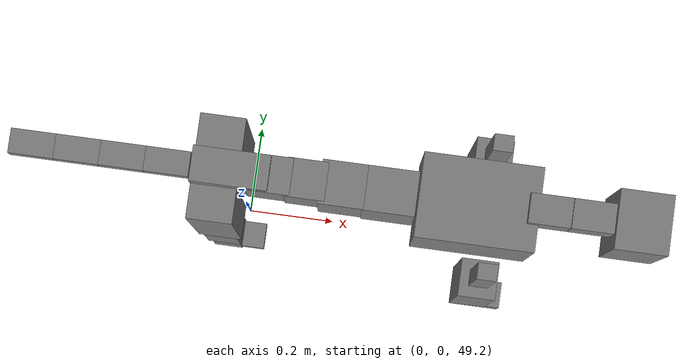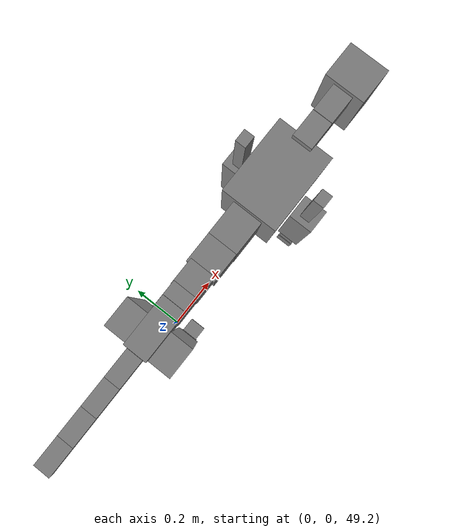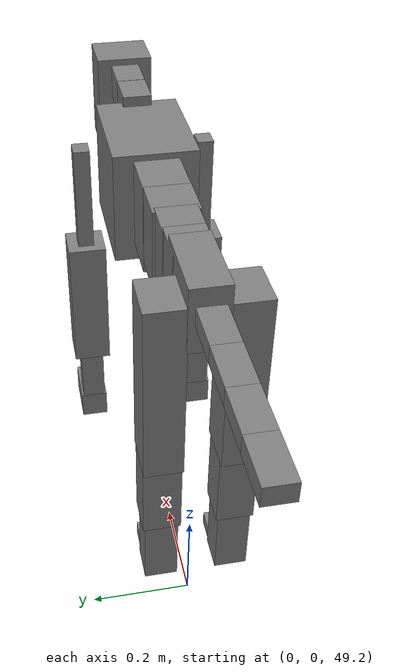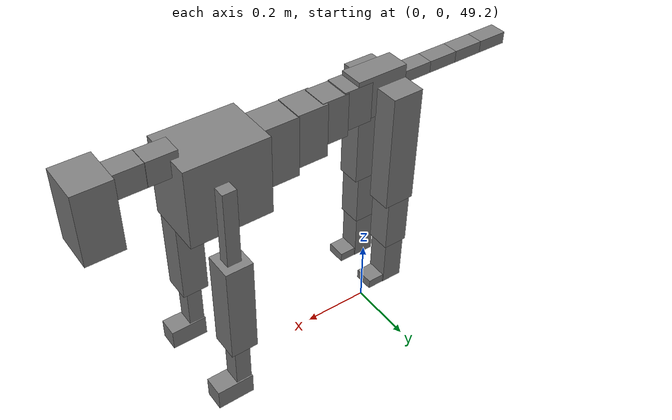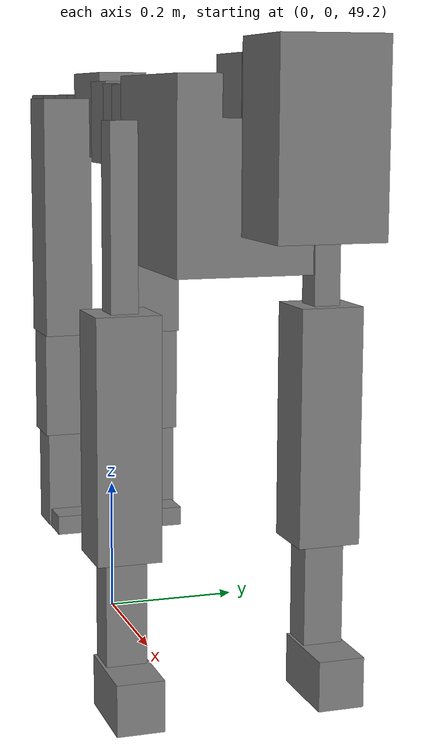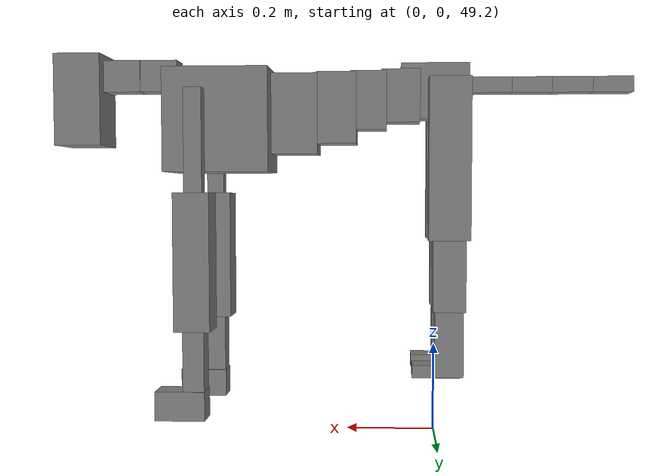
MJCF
<mujoco model="dog">

    <default>
        <joint armature="0.02" stiffness="1" damping="0.2" limited="true"/>
        <geom condim="3" friction="1 0.05 0.05" margin="0.01"/>
        <motor ctrllimited="true" ctrlrange="-1.0 1.0" forcelimited="true" gear="50"/>
    </default>

    <compiler inertiafromgeom="true" angle="radian"/>

    <option timestep="0.016" iterations="50" tolerance="1e-10" solver="Newton" jacobian="dense" cone="pyramidal"/>

    <size nconmax="20000" njmax="60000" nstack="5000000"/>
    <visual>
        <map force="0.1" zfar="30"/>
        <rgba haze="0.15 0.25 0.35 1"/>
        <quality shadowsize="2048"/>
        <global offwidth="800" offheight="800"/>
    </visual>

    <asset>
        <texture type="skybox" builtin="gradient" rgb1="0.3 0.5 0.7" rgb2="0 0 0" width="512" height="512"/>
        <texture name="texplane" type="2d" builtin="checker" rgb1=".2 .3 .4" rgb2=".1 0.15 0.2" width="512" height="512"
                 mark="cross" markrgb=".8 .8 .8"/>
        <texture name="texgeom" type="cube" builtin="flat" mark="cross" width="127" height="1278" rgb1="0.8 0.6 0.4"
                 rgb2="0.8 0.6 0.4" markrgb="1 1 1" random="0.01"/>

        <material name="matplane" reflectance="0.3" texture="texplane" texrepeat="1 1" texuniform="true"/>
        <material name="matgeom" texture="texgeom" texuniform="true" rgba="0.8 0.6 .4 1"/>
    </asset>

    <worldbody>
        <geom name="floor" pos="0 0 0" size="0 0 .25" type="plane" material="matplane" condim="3"/>

        <light directional="false" diffuse=".2 .2 .2" specular="0 0 0" pos="0 0 5" dir="0 0 -1" castshadow="false"/>
        <light mode="targetbodycom" target="torso" directional="false" diffuse=".8 .8 .8" specular="0.3 0.3 0.3"
               pos="0 0 4.0" dir="0 0 -1"/>

        <body name="root" pos="0 0 50">
            <freejoint name="root_1"/>
            <geom type="box" pos="0 0 -0.02" size="0.0774  0.0358  0.063" density="2030"/>

            <body name="spine1" pos="0.054 0 0">
                <joint name="spine1_y" axis="0 1 0" range="0 0.7" limited="true"/>
                <geom type="box" pos="0.02375 0 -0.03" size="0.04375  0.0375  0.05985" density="2030"/>

                <body name="spine2" pos="0.0612 0 0">
                    <joint name="spine2_y" axis="0 1 0" range="-0.15 0.15" limited="true"/>
                    <geom type="box" pos="0.03555  0  -0.04" size="0.04055  0.039  0.06615" density="2030"/>

                    <body name="spine3" pos="0.0730 0 0">
                        <joint name="spine3_y" axis="0 1 0" range="-0.15 0.15" limited="true"/>
                        <geom type="box" pos="0.03555  0  -0.057" size="0.04555  0.0445  0.081" density="2030"/>

                        <body name="spine4" pos="0.0780 0 0">
                            <joint name="spine4_y" axis="0 1 0" range="-0.15 0.15" limited="true"/>
                            <geom type="box" pos="0.05265  0  -0.07" size="0.05265  0.045  0.09135" density="2030"/>

                            <body name="torso" pos="0.1082 0 0">
                                <joint name="torso_y" axis="0 1 0" range="-0.15 0.15" limited="true"/>
                                <geom type="box" pos="0.11925  0  -0.085" size="0.11925  0.085  0.11745"
                                      density="2030"/>

                                <body name="neck1" pos="0.2160  0   0.0180">
                                    <joint name="neck1_y" axis="0 1 0" range="-1.2  -1" limited="true"/>
                                    <geom type="box" pos="0.0423  0  0" size="0.0423  0.03  0.036" density="2325"/>

                                    <body name="neck2" pos="0.0853  0  0">
                                        <joint name="neck2_y" axis="0 1 0" range="0.1  0" limited="true"/>
                                        <geom type="box" pos="0.0423  0  0" size="0.0423  0.03  0.036" density="2325"/>

                                        <body name="head" pos="0.0853  0  0">
                                            <joint name="head_y" axis="0 1 0" range="-0.3  -0.2" limited="true"/>
                                            <geom type="box" pos="0.0531  0  -0.055" size="0.0531  0.06  0.1044"
                                                  density="4030"/>

                                        </body>
                                    </body>
                                </body>

                                <body name="front_shoulder" pos="0.156  0   -0.0480">
                                    <joint name="front_shoulder_y" axis="0 1 0" range="-1 1.5" limited="true"/>
                                    <geom type="box" pos="0 0.13 -0.1007" size="0.0199  0.0170  0.1274" density="1158"/>
                                    <geom type="box" pos="0 -0.13 -0.1007" size="0.0199  0.0170  0.1274"
                                          density="1158"/>

                                    <body name="front_elbow" pos="0  0  -0.2014">
                                        <joint name="front_elbow_y" axis="0 1 0" range="-2 0" limited="true"/>
                                        <geom type="box" pos="0 0.13 -0.1516" size="0.0396  0.0405  0.1516"
                                              density="1081"/>
                                        <geom type="box" pos="0 -0.13 -0.1516" size="0.0396  0.0405  0.1516"
                                              density="1081"/>

                                        <body name="front_wrist" pos="0  0  -0.3032">
                                            <joint name="front_wrist_y" axis="0 1 0" range="-0.2 0" limited="true"/>
                                            <geom type="box" pos="0 0.13 -0.0739" size="0.0234  0.0260  0.0871"
                                                  density="1664"/>
                                            <geom type="box" pos="0 -0.13 -0.0739" size="0.0234  0.0260  0.0871"
                                                  density="1664"/>

                                            <body name="front_finger_end" pos="0  0  -0.1478">
                                                <joint name="front_finger_y" axis="0 1 0" range="-0.4 1"
                                                       limited="true"/>
                                                <geom type="box" pos="0.0300  0.13  -0.0174"
                                                      size="0.0551  0.0300  0.0324" density="1515"/>
                                                <geom type="box" pos="0.0300  -0.13  -0.0174"
                                                      size="0.0551  0.0300  0.0324" density="1515"/>

                                            </body>

                                        </body>
                                    </body>
                                </body>

                            </body>
                        </body>
                    </body>
                </body>
            </body>

            <body name="back_hip" pos="-0.03 0 -0.018">
                <joint name="back_hip_y" axis="0 1 0" range="-1.5 0.3" limited="true"/>
                <geom type="box" pos="0 0.07 -0.1576" size="0.0463  0.0363  0.1804" density="1154"/>
                <geom type="box" pos="0 -0.07 -0.1576" size="0.0463  0.0363  0.1804" density="1154"/>

                <body name="back_knee" pos="0  0  -0.3152">
                    <joint name="back_knee_y" axis="0 1 0" range="0 2.8" limited="true"/>
                    <geom type="box" pos="0 0.07 -0.0825" size="0.0364  0.0359  0.0980" density="1227"/>
                    <geom type="box" pos="0 -0.07 -0.0825" size="0.0364  0.0359  0.0980" density="1227"/>

                    <body name="back_ankle" pos="0  0  -0.1650">
                        <joint name="back_ankle_y" axis="0 1 0" range="-2.2 0" limited="true"/>
                        <geom type="box" pos="0 0.07 -0.0747" size="0.0317  0.0317  0.0860" density="1284"/>
                        <geom type="box" pos="0 -0.07 -0.0747" size="0.0317  0.0317  0.0860" density="1284"/>

                        <body name="back_toe_end" pos="0  0  -0.1495">
                            <joint name="back_toe_y" axis="0 1 0" range="-0.4 1" limited="true"/>
                            <geom type="box" pos="0.0289  0.07  0.0008" size="0.0530  0.0289  0.0142" density="1515"/>
                            <geom type="box" pos="0.0289  -0.07  0.0008" size="0.0530  0.0289  0.0142" density="1515"/>

                        </body>
                    </body>
                </body>
            </body>

            <body name="tail1" pos="-0.074 0 -0.006">
                <joint name="tail1_y" axis="0 1 0" range="-0.2 0.2" limited="true"/>
                <geom type="box" pos="-0.0536  0  0" size="0.045  0.025  0.0175" density="1587"/>

                <body name="tail2" pos="-0.09 0 0">
                    <joint name="tail2_y" axis="0 1 0" range="-0.2 0.2" limited="true"/>
                    <geom type="box" pos="-0.0536  0  0" size="0.045  0.025  0.0175" density="1587"/>

                    <body name="tail3" pos="-0.09 0 0">
                        <joint name="tail3_y" axis="0 1 0" range="-0.2 0.2" limited="true"/>
                        <geom type="box" pos="-0.0536  0  0" size="0.045  0.025  0.0175" density="1587"/>

                        <body name="tail4" pos="-0.09 0 0">
                            <joint name="tail4_y" axis="0 1 0" range="-0.2 0.2" limited="true"/>
                            <geom type="box" pos="-0.0536  0  0" size="0.045  0.025  0.0175" density="1587"/>

                        </body>
                    </body>
                </body>
            </body>
        </body>
    </worldbody>

    <actuator>
        <motor joint="spine1_y" forcerange="-150 150     "/>
        <motor joint="spine2_y" forcerange="-150 150     "/>
        <motor joint="spine3_y" forcerange="-150 150     "/>
        <motor joint="spine4_y" forcerange="-150 150     "/>
        <motor joint="torso_y" forcerange="-150 150     "/>
        <motor joint="neck1_y" forcerange="-100 100       "/>
        <motor joint="neck2_y" forcerange="-100 100       "/>
        <motor joint="head_y" forcerange="-150 150       "/>
        <motor joint="front_shoulder_y" forcerange="-104.55 108.97"/>
        <motor joint="front_elbow_y" forcerange="-198.72 195.91"/>
        <motor joint="front_wrist_y" forcerange="-118.63 89.46"/>
        <motor joint="front_finger_y" forcerange="-79.45 40.71"/>
        <motor joint="back_hip_y" forcerange="-322.28 361.56"/>
        <motor joint="back_knee_y" forcerange="-365.68 355.81"/>
        <motor joint="back_angle_y" forcerange="-244.14 163.39"/>
        <motor joint="back_toe_y" forcerange="-74.89 76.23"/>
        <motor joint="tail1_y" forcerange="-50 50     "/>
        <motor joint="tail2_y" forcerange="-50 50     "/>
        <motor joint="tail3_y" forcerange="-50 50     "/>
        <motor joint="tail4_y" forcerange="-50 50     "/>
    </actuator>
</mujoco>
